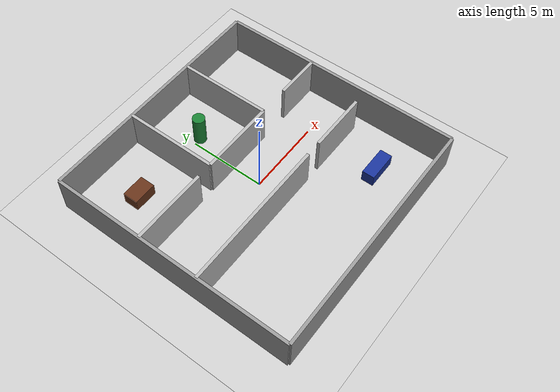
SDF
<sdf version="1.6">
 <world name="building_world">
  <physics name="1ms" type="ignored">
   <max_step_size>0.001</max_step_size>
   <real_time_factor>1.0</real_time_factor>
  </physics>
  <plugin filename="gz-sim-physics-system" name="gz::sim::systems::Physics"/>
  <plugin filename="gz-sim-user-commands-system" name="gz::sim::systems::UserCommands"/>
  <plugin filename="gz-sim-scene-broadcaster-system" name="gz::sim::systems::SceneBroadcaster"/>
  <plugin filename="gz-sim-sensors-system" name="gz::sim::systems::Sensors">
   <render_engine>ogre2</render_engine>
  </plugin>
  <light type="directional" name="sun">
   <pose>0 0 10 0 0 0</pose>
   <diffuse>0.8 0.8 0.8 1</diffuse>
   <specular>0.2 0.2 0.2 1</specular>
   <direction>-0.5 0.1 -0.9</direction>
  </light>
  <model name="ground_plane">
   <static>true</static>
   <link name="link">
    <collision name="collision">
     <geometry><plane><normal>0 0 1</normal><size>30 30</size></plane></geometry>
    </collision>
    <visual name="visual">
     <geometry><plane><normal>0 0 1</normal><size>30 30</size></plane></geometry>
     <material><ambient>0.8 0.8 0.8 1</ambient><diffuse>0.8 0.8 0.8 1</diffuse></material>
    </visual>
   </link>
  </model>
  <model name="outer_walls">
   <static>true</static>
   <link name="link">
    <visual name="wall_n">
     <pose>0 8 1.25 0 0 0</pose>
     <geometry><box><size>16 0.2 2.5</size></box></geometry>
     <material><ambient>0.6 0.6 0.6 1</ambient></material>
    </visual>
    <collision name="col_n">
     <pose>0 8 1.25 0 0 0</pose>
     <geometry><box><size>16 0.2 2.5</size></box></geometry>
    </collision>
    <visual name="wall_s">
     <pose>0 -8 1.25 0 0 0</pose>
     <geometry><box><size>16 0.2 2.5</size></box></geometry>
     <material><ambient>0.6 0.6 0.6 1</ambient></material>
    </visual>
    <collision name="col_s">
     <pose>0 -8 1.25 0 0 0</pose>
     <geometry><box><size>16 0.2 2.5</size></box></geometry>
    </collision>
    <visual name="wall_e">
     <pose>8 0 1.25 0 0 0</pose>
     <geometry><box><size>0.2 16 2.5</size></box></geometry>
     <material><ambient>0.6 0.6 0.6 1</ambient></material>
    </visual>
    <collision name="col_e">
     <pose>8 0 1.25 0 0 0</pose>
     <geometry><box><size>0.2 16 2.5</size></box></geometry>
    </collision>
    <visual name="wall_w">
     <pose>-8 0 1.25 0 0 0</pose>
     <geometry><box><size>0.2 16 2.5</size></box></geometry>
     <material><ambient>0.6 0.6 0.6 1</ambient></material>
    </visual>
    <collision name="col_w">
     <pose>-8 0 1.25 0 0 0</pose>
     <geometry><box><size>0.2 16 2.5</size></box></geometry>
    </collision>
   </link>
  </model>
  <model name="interior_partitions">
   <static>true</static>
   <link name="link">
    <visual name="corr_n1">
     <pose>-5.5 2 1.25 0 0 0</pose>
     <geometry><box><size>5 0.2 2.5</size></box></geometry>
    </visual>
    <collision name="c_corr_n1">
     <pose>-5.5 2 1.25 0 0 0</pose>
     <geometry><box><size>5 0.2 2.5</size></box></geometry>
    </collision>
    <visual name="corr_n2">
     <pose>0.5 2 1.25 0 0 0</pose>
     <geometry><box><size>5 0.2 2.5</size></box></geometry>
    </visual>
    <collision name="c_corr_n2">
     <pose>0.5 2 1.25 0 0 0</pose>
     <geometry><box><size>0.5 2 1.25 0 0 0</size></box></geometry>
    </collision>
    <visual name="corr_n3">
     <pose>6.5 2 1.25 0 0 0</pose>
     <geometry><box><size>3 0.2 2.5</size></box></geometry>
    </visual>
    <collision name="c_corr_n3">
     <pose>6.5 2 1.25 0 0 0</pose>
     <geometry><box><size>3 0.2 2.5</size></box></geometry>
    </collision>
    <visual name="corr_s1">
     <pose>-3 -2 1.25 0 0 0</pose>
     <geometry><box><size>10 0.2 2.5</size></box></geometry>
    </visual>
    <collision name="c_corr_s1">
     <pose>-3 -2 1.25 0 0 0</pose>
     <geometry><box><size>10 0.2 2.5</size></box></geometry>
    </collision>
    <visual name="corr_s2">
     <pose>5 -2 1.25 0 0 0</pose>
     <geometry><box><size>4 0.2 2.5</size></box></geometry>
    </visual>
    <collision name="c_corr_s2">
     <pose>5 -2 1.25 0 0 0</pose>
     <geometry><box><size>4 0.2 2.5</size></box></geometry>
    </collision>
    <visual name="div_r1_r2">
     <pose>-2 5 1.25 0 0 0</pose>
     <geometry><box><size>0.2 6 2.5</size></box></geometry>
    </visual>
    <collision name="c_div_r1_r2">
     <pose>-2 5 1.25 0 0 0</pose>
     <geometry><box><size>0.2 6 2.5</size></box></geometry>
    </collision>
    <visual name="div_r2_r3">
     <pose>3 5 1.25 0 0 0</pose>
     <geometry><box><size>0.2 6 2.5</size></box></geometry>
    </visual>
    <collision name="c_div_r2_r3">
     <pose>3 5 1.25 0 0 0</pose>
     <geometry><box><size>0.2 6 2.5</size></box></geometry>
    </collision>
   </link>
  </model>
  <model name="room1_table">
   <static>true</static>
   <pose>-5 5 0.4 0 0 0</pose>
   <link name="link">
    <visual name="vis">
     <geometry><box><size>1.5 1.0 0.8</size></box></geometry>
     <material><ambient>0.4 0.2 0.1 1</ambient></material>
    </visual>
    <collision name="col"><geometry><box><size>1.5 1.0 0.8</size></box></geometry></collision>
   </link>
  </model>
  <model name="room2_pillar">
   <static>true</static>
   <pose>0.5 5 1.0 0 0 0</pose>
   <link name="link">
    <visual name="vis">
     <geometry><cylinder><radius>0.4</radius><length>2.0</length></cylinder></geometry>
     <material><ambient>0.1 0.5 0.2 1</ambient></material>
    </visual>
    <collision name="col">
     <geometry><cylinder><radius>0.4</radius><length>2.0</length></cylinder></geometry>
    </collision>
   </link>
  </model>
  <model name="room3_desk">
   <static>true</static>
   <pose>5 -5 0.4 0 0 0</pose>
   <link name="link">
    <visual name="vis">
     <geometry><box><size>2.0 0.8 0.8</size></box></geometry>
     <material><ambient>0.1 0.2 0.6 1</ambient></material>
    </visual>
    <collision name="col"><geometry><box><size>2.0 0.8 0.8</size></box></geometry></collision>
   </link>
  </model>
 </world>
</sdf>
